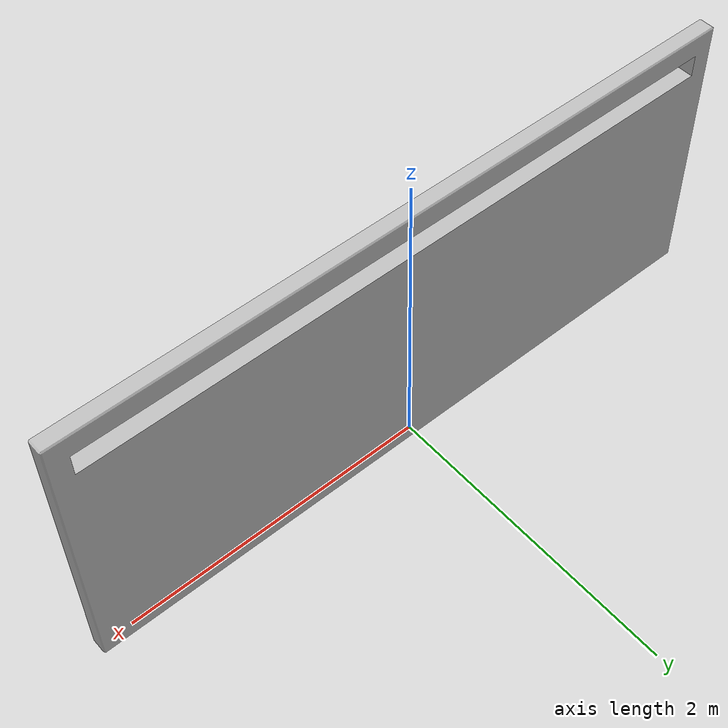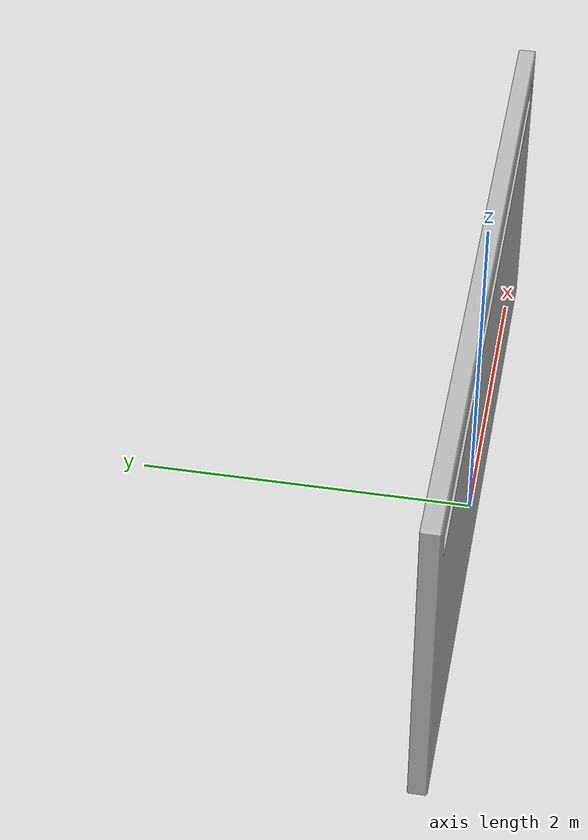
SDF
<?xml version="1.0" ?>
<sdf version="1.8">
  <model name="aws_robomaker_residential_RoomWall_01">
    <link name="link">
      <inertial>
        <mass>100</mass>
        <inertia>
          <ixx>  2.9479121491e-01 </ixx>
          <ixy>  5.8955401771e-10 </ixy>
          <ixz>  1.3165627427e-13 </ixz>
          <iyy>  1.6775517992e+00 </iyy>
          <iyz> -2.1037219279e-12 </iyz>
          <izz>  1.9702852095e+00 </izz>
        </inertia>
      </inertial>
      <collision name="collision">
        <geometry>
          <mesh>
            <uri>model://aws_robomaker_residential_RoomWall_01/meshes/aws_RoomWall_01_collision.DAE</uri>
            <scale>1 1 1</scale>
          </mesh>
        </geometry>
      </collision>
      <visual name="visual">
	      <geometry>
          <mesh>
            <uri>model://aws_robomaker_residential_RoomWall_01/meshes/aws_RoomWall_01_visual.DAE</uri>
          </mesh>
        </geometry>
      <meta> <layer> 2 </layer></meta>
      </visual>
    </link>
  <static>1</static>
  </model>
</sdf>
